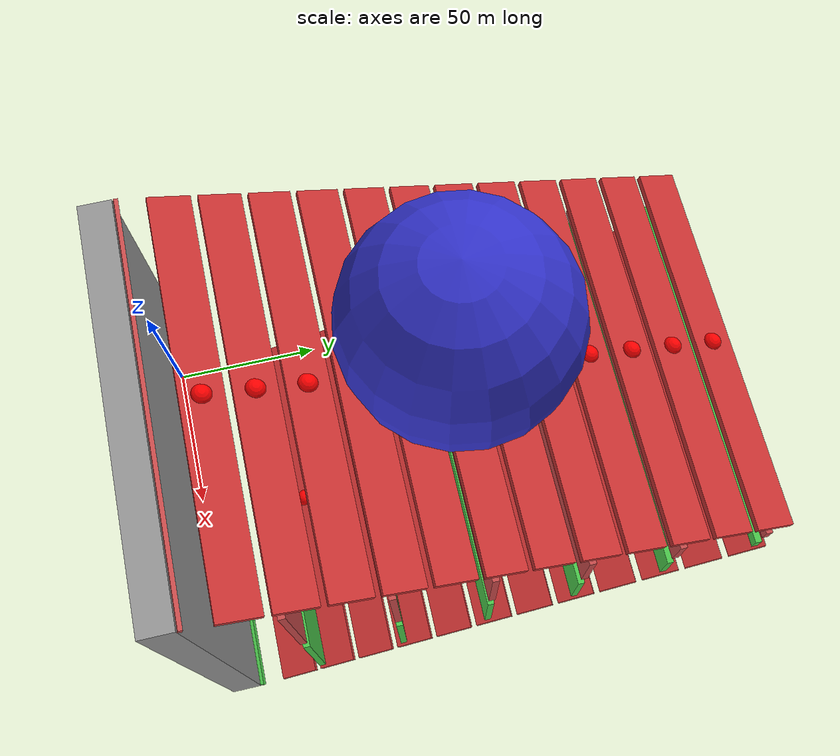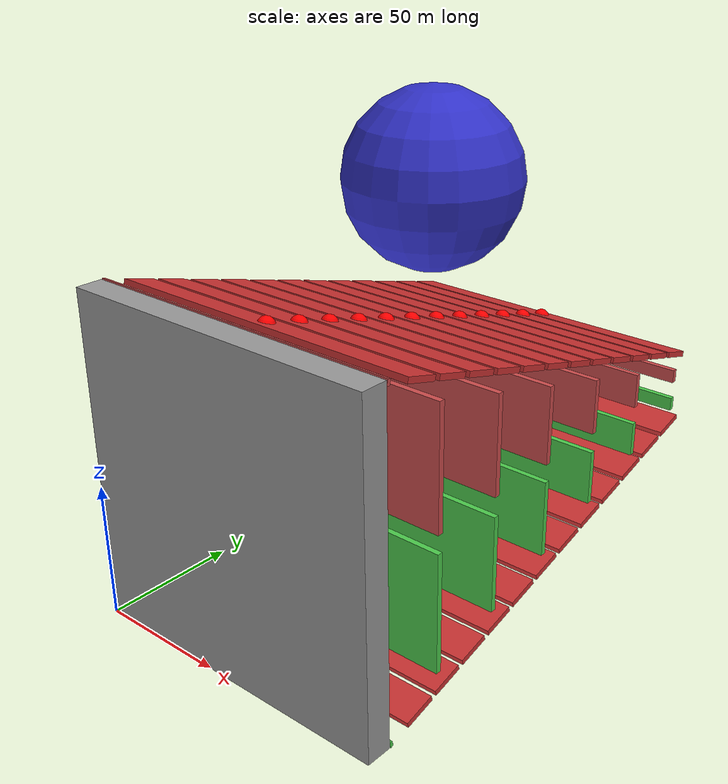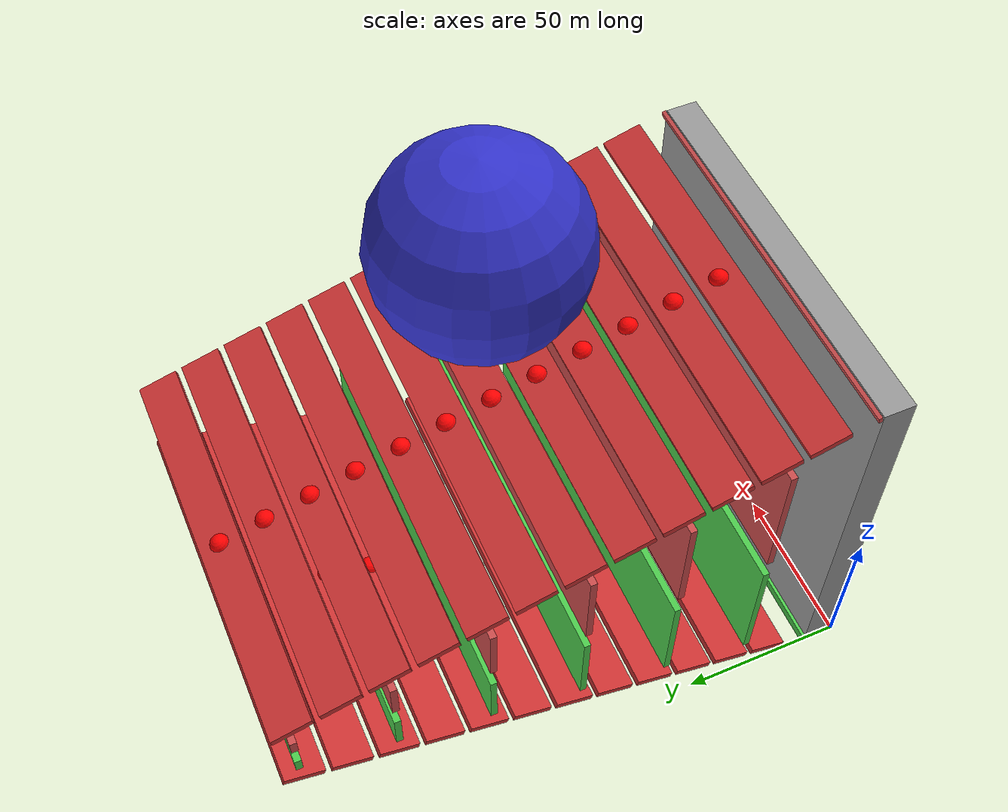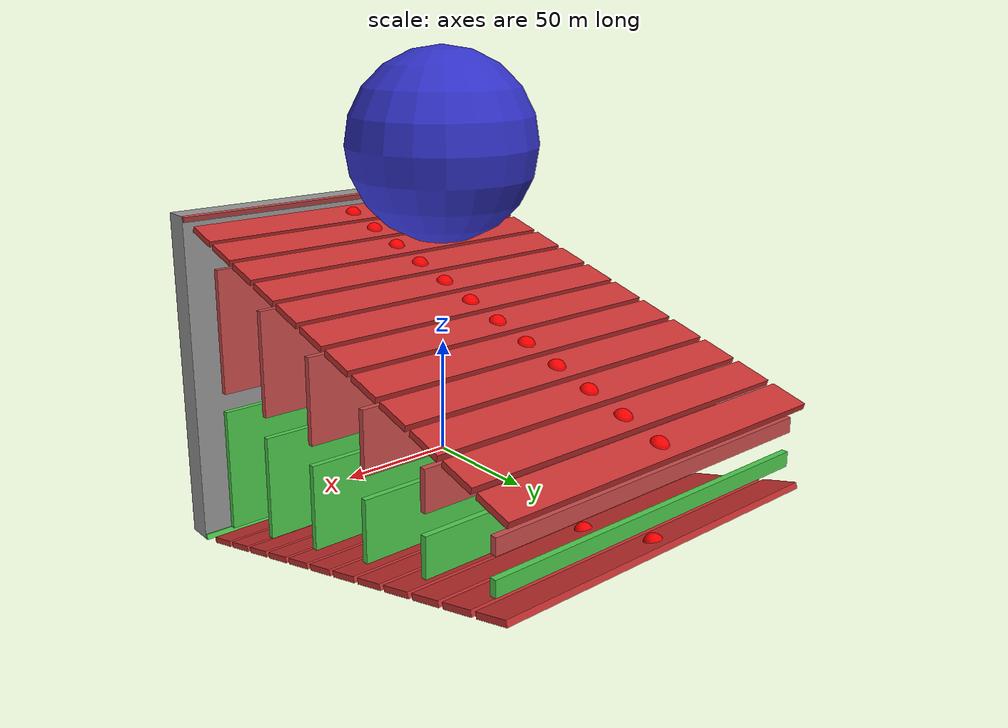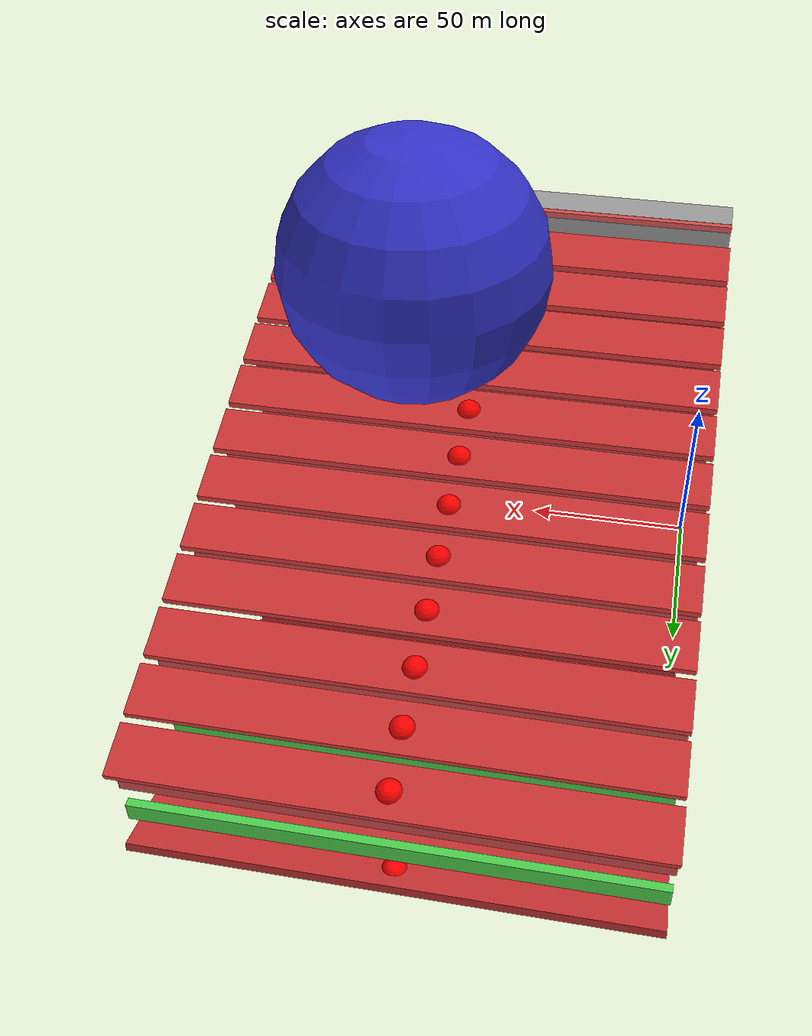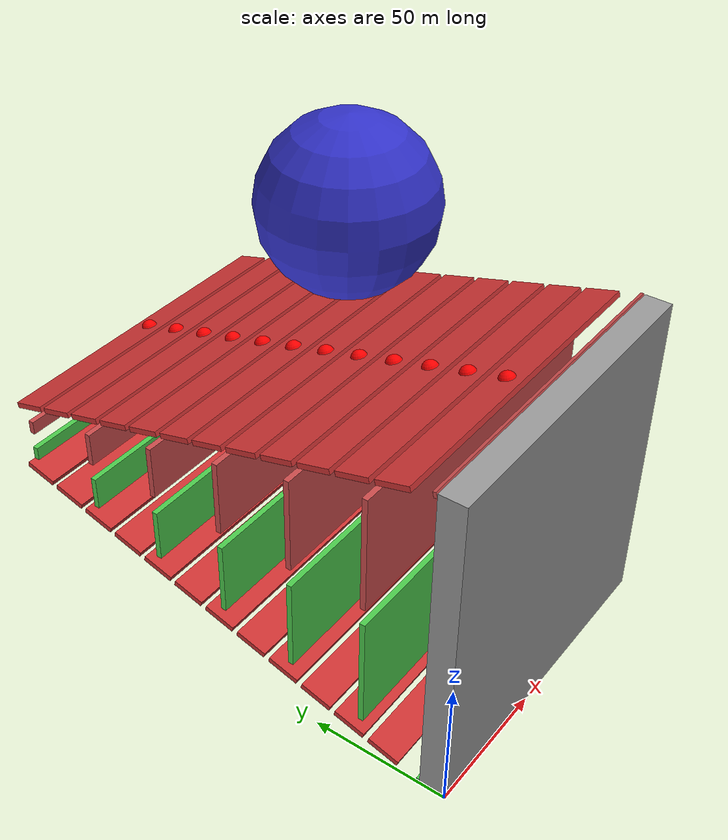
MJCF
<?xml version="1.0" ?>
<mujoco>
  <worldbody>
    <body name="falling_ball" pos="70 90 150" gravcomp="1">
      <geom type="sphere" size="30" rgba="0.2 0.2 0.8 1" density="10"/>
      <joint type="slide" axis="1 0 0" name="ball_slide_x"/>
      <joint type="slide" axis="0 1 0" name="ball_slide_y"/>
      <joint type="slide" axis="0 0 1" name="ball_slide_z"/>
      <site name="ball_site" pos="0 0 0" size="1" rgba="1 0 0 1"/>
    </body>
    <body name="base_box" pos="60 4.77 60.877">
      <geom type="box" size="60 4.77 60.877" rgba="0.6 0.6 0.6 1" density="1"/>
      <body name="small_box_1" pos="0 5.6 60" euler="-15.642 0 0">
        <geom type="box" size="60 0.6 1" rgba="0.8 0.3 0.3 1"/>
        <joint type="hinge" name="joint_0" axis="1 0 0" pos="0 0 0" range="-90 90" stiffness="50000" damping="50000" springref="0"/>
        <body name="block_2" pos="0 14.0 0">
          <geom type="box" size="60 6.0 1" rgba="0.8 0.2 0.2 1" density="1000"/>
          <site name="site2" pos="0 0 0" size="3" rgba="1 0 0 1"/>
          <joint type="hinge" name="joint_2" axis="1 0 0" range="-180 180" pos="0 0 0" stiffness="50000" damping="50000" springref="0" actuatorfrclimited="false"/>
          <body name="block_3" pos="0 14.0 0">
            <geom type="box" size="60 6.0 1" rgba="0.8 0.2 0.2 1" density="1000"/>
            <site name="site3" pos="0 0 0" size="3" rgba="1 0 0 1"/>
            <joint type="hinge" name="joint_3" axis="1 0 0" range="-180 180" pos="0 0 0" stiffness="50000" damping="50000" springref="0" actuatorfrclimited="false"/>
            <body name="lbox_6" pos="0 3.0 -27.7" euler="15.642 0 0">
              <geom type="box" size="60 1 21.7" rgba="0.8 0.3 0.3 1"/>
              <joint type="hinge" name="joint_6" axis="1 0 0" pos="0 0 0" range="-180 180" stiffness="50000" damping="50000" springref="0"/>
            </body>
            <body name="block_8" pos="0 14.0 0">
              <geom type="box" size="60 6.0 1" rgba="0.8 0.2 0.2 1" density="1000"/>
              <site name="site8" pos="0 0 0" size="3" rgba="1 0 0 1"/>
              <joint type="hinge" name="joint_8" axis="1 0 0" range="-180 180" pos="0 0 0" stiffness="50000" damping="50000" springref="0" actuatorfrclimited="false"/>
              <body name="block_9" pos="0 14.0 0">
                <geom type="box" size="60 6.0 1" rgba="0.8 0.2 0.2 1" density="1000"/>
                <site name="site9" pos="0 0 0" size="3" rgba="1 0 0 1"/>
                <joint type="hinge" name="joint_9" axis="1 0 0" range="-180 180" pos="0 0 0" stiffness="50000" damping="50000" springref="0" actuatorfrclimited="false"/>
                <body name="lbox_12" pos="0 3.0 -23.7" euler="15.642 0 0">
                  <geom type="box" size="60 1 17.7" rgba="0.8 0.3 0.3 1"/>
                  <joint type="hinge" name="joint_12" axis="1 0 0" pos="0 0 0" range="-180 180" stiffness="50000" damping="50000" springref="0"/>
                </body>
                <body name="block_14" pos="0 14.0 0">
                  <geom type="box" size="60 6.0 1" rgba="0.8 0.2 0.2 1" density="1000"/>
                  <site name="site14" pos="0 0 0" size="3" rgba="1 0 0 1"/>
                  <joint type="hinge" name="joint_14" axis="1 0 0" range="-180 180" pos="0 0 0" stiffness="50000" damping="50000" springref="0" actuatorfrclimited="false"/>
                  <body name="block_15" pos="0 14.0 0">
                    <geom type="box" size="60 6.0 1" rgba="0.8 0.2 0.2 1" density="1000"/>
                    <site name="site15" pos="0 0 0" size="3" rgba="1 0 0 1"/>
                    <joint type="hinge" name="joint_15" axis="1 0 0" range="-180 180" pos="0 0 0" stiffness="50000" damping="50000" springref="0" actuatorfrclimited="false"/>
                    <body name="lbox_18" pos="0 3.0 -20" euler="15.642 0 0">
                      <geom type="box" size="60 1 14" rgba="0.8 0.3 0.3 1"/>
                      <joint type="hinge" name="joint_18" axis="1 0 0" pos="0 0 0" range="-180 180" stiffness="50000" damping="50000" springref="0"/>
                    </body>
                    <body name="block_20" pos="0 14.0 0">
                      <geom type="box" size="60 6.0 1" rgba="0.8 0.2 0.2 1" density="1000"/>
                      <site name="site20" pos="0 0 0" size="3" rgba="1 0 0 1"/>
                      <joint type="hinge" name="joint_20" axis="1 0 0" range="-180 180" pos="0 0 0" stiffness="50000" damping="50000" springref="0" actuatorfrclimited="false"/>
                      <body name="block_21" pos="0 14.0 0">
                        <geom type="box" size="60 6.0 1" rgba="0.8 0.2 0.2 1" density="1000"/>
                        <site name="site21" pos="0 0 0" size="3" rgba="1 0 0 1"/>
                        <joint type="hinge" name="joint_21" axis="1 0 0" range="-180 180" pos="0 0 0" stiffness="50000" damping="50000" springref="0" actuatorfrclimited="false"/>
                        <body name="lbox_24" pos="0 3.0 -16" euler="15.642 0 0">
                          <geom type="box" size="60 1 10" rgba="0.8 0.3 0.3 1"/>
                          <joint type="hinge" name="joint_24" axis="1 0 0" pos="0 0 0" range="-180 180" stiffness="50000" damping="50000" springref="0"/>
                        </body>
                        <body name="block_26" pos="0 14.0 0">
                          <geom type="box" size="60 6.0 1" rgba="0.8 0.2 0.2 1" density="1000"/>
                          <site name="site26" pos="0 0 0" size="3" rgba="1 0 0 1"/>
                          <joint type="hinge" name="joint_26" axis="1 0 0" range="-180 180" pos="0 0 0" stiffness="50000" damping="50000" springref="0" actuatorfrclimited="false"/>
                          <body name="block_27" pos="0 14.0 0">
                            <geom type="box" size="60 6.0 1" rgba="0.8 0.2 0.2 1" density="1000"/>
                            <site name="site27" pos="0 0 0" size="3" rgba="1 0 0 1"/>
                            <joint type="hinge" name="joint_27" axis="1 0 0" range="-180 180" pos="0 0 0" stiffness="50000" damping="50000" springref="0" actuatorfrclimited="false"/>
                            <body name="lbox_30" pos="0 3.0 -12.3" euler="15.642 0 0">
                              <geom type="box" size="60 1 6.3" rgba="0.8 0.3 0.3 1"/>
                              <joint type="hinge" name="joint_30" axis="1 0 0" pos="0 0 0" range="-180 180" stiffness="50000" damping="50000" springref="0"/>
                            </body>
                            <body name="block_32" pos="0 14.0 0">
                              <geom type="box" size="60 6.0 1" rgba="0.8 0.2 0.2 1" density="1000"/>
                              <site name="site32" pos="0 0 0" size="3" rgba="1 0 0 1"/>
                              <joint type="hinge" name="joint_32" axis="1 0 0" range="-180 180" pos="0 0 0" stiffness="50000" damping="50000" springref="0" actuatorfrclimited="false"/>
                              <body name="block_33" pos="0 14.0 0">
                                <geom type="box" size="60 6.0 1" rgba="0.8 0.2 0.2 1" density="1000"/>
                                <site name="site33" pos="0 0 0" size="3" rgba="1 0 0 1"/>
                                <joint type="hinge" name="joint_33" axis="1 0 0" range="-180 180" pos="0 0 0" stiffness="50000" damping="50000" springref="0" actuatorfrclimited="false"/>
                                <body name="lbox_36" pos="0 3.0 -8.5" euler="15.642 0 0">
                                  <geom type="box" size="60 1 2.5" rgba="0.8 0.3 0.3 1"/>
                                  <joint type="hinge" name="joint_36" axis="1 0 0" pos="0 0 0" range="-180 180" stiffness="50000" damping="50000" springref="0"/>
                                </body>
                              </body>
                            </body>
                          </body>
                        </body>
                      </body>
                    </body>
                  </body>
                </body>
              </body>
            </body>
          </body>
        </body>
      </body>
      <body name="small_box_2" pos="0 5.6 -60" euler="15.642 0 0">
        <geom type="box" size="60 0.6 1" rgba="0.3 0.8 0.3 1"/>
        <joint type="hinge" name="joint_1" axis="1 0 0" pos="0 0 0" range="-90 90" stiffness="50000" damping="50000" springref="0"/>
        <body name="block_4" pos="0 14.0 0">
          <geom type="box" size="60 6.0 1" rgba="0.8 0.2 0.2 1" density="1000"/>
          <site name="site4" pos="0 0 0" size="3" rgba="1 0 0 1"/>
          <joint type="hinge" name="joint_4" axis="1 0 0" range="-180 180" pos="0 0 0" stiffness="50000" damping="50000" springref="0" actuatorfrclimited="false"/>
          <body name="block_5" pos="0 14.0 0">
            <geom type="box" size="60 6.0 1" rgba="0.8 0.2 0.2 1" density="1000"/>
            <site name="site5" pos="0 0 0" size="3" rgba="1 0 0 1"/>
            <joint type="hinge" name="joint_5" axis="1 0 0" range="-180 180" pos="0 0 0" stiffness="50000" damping="50000" springref="0" actuatorfrclimited="false"/>
            <body name="rbox_7" pos="0 3.0 27.7" euler="-15.642 0 0">
              <geom type="box" size="60 1 21.7" rgba="0.3 0.8 0.3 1"/>
              <joint type="hinge" name="joint_7" axis="1 0 0" pos="0 0 0" range="-180 180" stiffness="50000" damping="50000" springref="0"/>
            </body>
            <body name="block_10" pos="0 14.0 0">
              <geom type="box" size="60 6.0 1" rgba="0.8 0.2 0.2 1" density="1000"/>
              <site name="site10" pos="0 0 0" size="3" rgba="1 0 0 1"/>
              <joint type="hinge" name="joint_10" axis="1 0 0" range="-180 180" pos="0 0 0" stiffness="50000" damping="50000" springref="0" actuatorfrclimited="false"/>
              <body name="block_11" pos="0 14.0 0">
                <geom type="box" size="60 6.0 1" rgba="0.8 0.2 0.2 1" density="1000"/>
                <site name="site11" pos="0 0 0" size="3" rgba="1 0 0 1"/>
                <joint type="hinge" name="joint_11" axis="1 0 0" range="-180 180" pos="0 0 0" stiffness="50000" damping="50000" springref="0" actuatorfrclimited="false"/>
                <body name="rbox_13" pos="0 3.0 23.7" euler="-15.642 0 0">
                  <geom type="box" size="60 1 17.7" rgba="0.3 0.8 0.3 1"/>
                  <joint type="hinge" name="joint_13" axis="1 0 0" pos="0 0 0" range="-180 180" stiffness="50000" damping="50000" springref="0"/>
                </body>
                <body name="block_16" pos="0 14.0 0">
                  <geom type="box" size="60 6.0 1" rgba="0.8 0.2 0.2 1" density="1000"/>
                  <site name="site16" pos="0 0 0" size="3" rgba="1 0 0 1"/>
                  <joint type="hinge" name="joint_16" axis="1 0 0" range="-180 180" pos="0 0 0" stiffness="50000" damping="50000" springref="0" actuatorfrclimited="false"/>
                  <body name="block_17" pos="0 14.0 0">
                    <geom type="box" size="60 6.0 1" rgba="0.8 0.2 0.2 1" density="1000"/>
                    <site name="site17" pos="0 0 0" size="3" rgba="1 0 0 1"/>
                    <joint type="hinge" name="joint_17" axis="1 0 0" range="-180 180" pos="0 0 0" stiffness="50000" damping="50000" springref="0" actuatorfrclimited="false"/>
                    <body name="rbox_19" pos="0 3.0 20" euler="-15.642 0 0">
                      <geom type="box" size="60 1 14" rgba="0.3 0.8 0.3 1"/>
                      <joint type="hinge" name="joint_19" axis="1 0 0" pos="0 0 0" range="-180 180" stiffness="50000" damping="50000" springref="0"/>
                    </body>
                    <body name="block_22" pos="0 14.0 0">
                      <geom type="box" size="60 6.0 1" rgba="0.8 0.2 0.2 1" density="1000"/>
                      <site name="site22" pos="0 0 0" size="3" rgba="1 0 0 1"/>
                      <joint type="hinge" name="joint_22" axis="1 0 0" range="-180 180" pos="0 0 0" stiffness="50000" damping="50000" springref="0" actuatorfrclimited="false"/>
                      <body name="block_23" pos="0 14.0 0">
                        <geom type="box" size="60 6.0 1" rgba="0.8 0.2 0.2 1" density="1000"/>
                        <site name="site23" pos="0 0 0" size="3" rgba="1 0 0 1"/>
                        <joint type="hinge" name="joint_23" axis="1 0 0" range="-180 180" pos="0 0 0" stiffness="50000" damping="50000" springref="0" actuatorfrclimited="false"/>
                        <body name="rbox_25" pos="0 3.0 16" euler="-15.642 0 0">
                          <geom type="box" size="60 1 10" rgba="0.3 0.8 0.3 1"/>
                          <joint type="hinge" name="joint_25" axis="1 0 0" pos="0 0 0" range="-180 180" stiffness="50000" damping="50000" springref="0"/>
                        </body>
                        <body name="block_28" pos="0 14.0 0">
                          <geom type="box" size="60 6.0 1" rgba="0.8 0.2 0.2 1" density="1000"/>
                          <site name="site28" pos="0 0 0" size="3" rgba="1 0 0 1"/>
                          <joint type="hinge" name="joint_28" axis="1 0 0" range="-180 180" pos="0 0 0" stiffness="50000" damping="50000" springref="0" actuatorfrclimited="false"/>
                          <body name="block_29" pos="0 14.0 0">
                            <geom type="box" size="60 6.0 1" rgba="0.8 0.2 0.2 1" density="1000"/>
                            <site name="site29" pos="0 0 0" size="3" rgba="1 0 0 1"/>
                            <joint type="hinge" name="joint_29" axis="1 0 0" range="-180 180" pos="0 0 0" stiffness="50000" damping="50000" springref="0" actuatorfrclimited="false"/>
                            <body name="rbox_31" pos="0 3.0 12.3" euler="-15.642 0 0">
                              <geom type="box" size="60 1 6.3" rgba="0.3 0.8 0.3 1"/>
                              <joint type="hinge" name="joint_31" axis="1 0 0" pos="0 0 0" range="-180 180" stiffness="50000" damping="50000" springref="0"/>
                            </body>
                            <body name="block_34" pos="0 14.0 0">
                              <geom type="box" size="60 6.0 1" rgba="0.8 0.2 0.2 1" density="1000"/>
                              <site name="site34" pos="0 0 0" size="3" rgba="1 0 0 1"/>
                              <joint type="hinge" name="joint_34" axis="1 0 0" range="-180 180" pos="0 0 0" stiffness="50000" damping="50000" springref="0" actuatorfrclimited="false"/>
                              <body name="block_35" pos="0 14.0 0">
                                <geom type="box" size="60 6.0 1" rgba="0.8 0.2 0.2 1" density="1000"/>
                                <site name="site35" pos="0 0 0" size="3" rgba="1 0 0 1"/>
                                <joint type="hinge" name="joint_35" axis="1 0 0" range="-180 180" pos="0 0 0" stiffness="50000" damping="50000" springref="0" actuatorfrclimited="false"/>
                                <body name="rbox_37" pos="0 3.0 8.5" euler="-15.642 0 0">
                                  <geom type="box" size="60 1 2.5" rgba="0.3 0.8 0.3 1"/>
                                  <joint type="hinge" name="joint_37" axis="1 0 0" pos="0 0 0" range="-180 180" stiffness="50000" damping="50000" springref="0"/>
                                </body>
                              </body>
                            </body>
                          </body>
                        </body>
                      </body>
                    </body>
                  </body>
                </body>
              </body>
            </body>
          </body>
        </body>
      </body>
    </body>
  </worldbody>
  <option integrator="implicitfast"/>
  <equality>
    <weld body1="lbox_6" body2="rbox_7" active="true" solref="0.02 1" solimp="0.9 0.95 0.001"/>
  </equality>
  <equality>
    <weld body1="lbox_12" body2="rbox_13" active="true" solref="0.02 1" solimp="0.9 0.95 0.001"/>
  </equality>
  <equality>
    <weld body1="lbox_18" body2="rbox_19" active="true" solref="0.02 1" solimp="0.9 0.95 0.001"/>
  </equality>
  <equality>
    <weld body1="lbox_24" body2="rbox_25" active="true" solref="0.02 1" solimp="0.9 0.95 0.001"/>
  </equality>
  <equality>
    <weld body1="lbox_30" body2="rbox_31" active="true" solref="0.02 1" solimp="0.9 0.95 0.001"/>
  </equality>
  <equality>
    <weld body1="lbox_36" body2="rbox_37" active="true" solref="0.02 1" solimp="0.9 0.95 0.001"/>
  </equality>
  <actuator>
    <position joint="joint_0" ctrlrange="-1 1" gear="100" kp="99999990" kv="9999999"/>
    <position joint="joint_1" ctrlrange="-1 1" gear="100" kp="99999990" kv="9999999"/>
    <position joint="joint_2" ctrlrange="-1 1" gear="100" kp="99999990" kv="9999999"/>
    <position joint="joint_3" ctrlrange="-1 1" gear="100" kp="99999990" kv="9999999"/>
    <position joint="joint_4" ctrlrange="-1 1" gear="100" kp="99999990" kv="9999999"/>
    <position joint="joint_5" ctrlrange="-1 1" gear="100" kp="99999990" kv="9999999"/>
    <position joint="joint_6" ctrlrange="-1 1" gear="100" kp="99999990" kv="9999999"/>
    <position joint="joint_7" ctrlrange="-1 1" gear="100" kp="99999990" kv="9999999"/>
    <position joint="joint_8" ctrlrange="-1 1" gear="100" kp="99999990" kv="9999999"/>
    <position joint="joint_9" ctrlrange="-1 1" gear="100" kp="99999990" kv="9999999"/>
    <position joint="joint_10" ctrlrange="-1 1" gear="100" kp="99999990" kv="9999999"/>
    <position joint="joint_11" ctrlrange="-1 1" gear="100" kp="99999990" kv="9999999"/>
    <position joint="joint_12" ctrlrange="-1 1" gear="100" kp="99999990" kv="9999999"/>
    <position joint="joint_13" ctrlrange="-1 1" gear="100" kp="99999990" kv="9999999"/>
    <position joint="joint_14" ctrlrange="-1 1" gear="100" kp="99999990" kv="9999999"/>
    <position joint="joint_15" ctrlrange="-1 1" gear="100" kp="99999990" kv="9999999"/>
    <position joint="joint_16" ctrlrange="-1 1" gear="100" kp="99999990" kv="9999999"/>
    <position joint="joint_17" ctrlrange="-1 1" gear="100" kp="99999990" kv="9999999"/>
    <position joint="joint_18" ctrlrange="-1 1" gear="100" kp="99999990" kv="9999999"/>
    <position joint="joint_19" ctrlrange="-1 1" gear="100" kp="99999990" kv="9999999"/>
    <position joint="joint_20" ctrlrange="-1 1" gear="100" kp="99999990" kv="9999999"/>
    <position joint="joint_21" ctrlrange="-1 1" gear="100" kp="99999990" kv="9999999"/>
    <position joint="joint_22" ctrlrange="-1 1" gear="100" kp="99999990" kv="9999999"/>
    <position joint="joint_23" ctrlrange="-1 1" gear="100" kp="99999990" kv="9999999"/>
    <position joint="joint_24" ctrlrange="-1 1" gear="100" kp="99999990" kv="9999999"/>
    <position joint="joint_25" ctrlrange="-1 1" gear="100" kp="99999990" kv="9999999"/>
    <position joint="joint_26" ctrlrange="-1 1" gear="100" kp="99999990" kv="9999999"/>
    <position joint="joint_27" ctrlrange="-1 1" gear="100" kp="99999990" kv="9999999"/>
    <position joint="joint_28" ctrlrange="-1 1" gear="100" kp="99999990" kv="9999999"/>
    <position joint="joint_29" ctrlrange="-1 1" gear="100" kp="99999990" kv="9999999"/>
    <position joint="joint_30" ctrlrange="-1 1" gear="100" kp="99999990" kv="9999999"/>
    <position joint="joint_31" ctrlrange="-1 1" gear="100" kp="99999990" kv="9999999"/>
    <position joint="joint_32" ctrlrange="-1 1" gear="100" kp="99999990" kv="9999999"/>
    <position joint="joint_33" ctrlrange="-1 1" gear="100" kp="99999990" kv="9999999"/>
    <position joint="joint_34" ctrlrange="-1 1" gear="100" kp="99999990" kv="9999999"/>
    <position joint="joint_35" ctrlrange="-1 1" gear="100" kp="99999990" kv="9999999"/>
    <position joint="joint_36" ctrlrange="-1 1" gear="100" kp="99999990" kv="9999999"/>
    <position joint="joint_37" ctrlrange="-1 1" gear="100" kp="99999990" kv="9999999"/>
    <position joint="ball_slide_x" ctrllimited="true" ctrlrange="-70000 70000" kp="10000" dampratio="1" gear="100" name="ball_motor_x"/>
    <position joint="ball_slide_y" ctrllimited="true" ctrlrange="-70000 70000" kp="10000" dampratio="1" gear="100" name="ball_motor_y"/>
    <position joint="ball_slide_z" ctrllimited="true" ctrlrange="-70000 70000" kp="10000" dampratio="1" gear="100" name="ball_motor_z"/>
  </actuator>
</mujoco>
